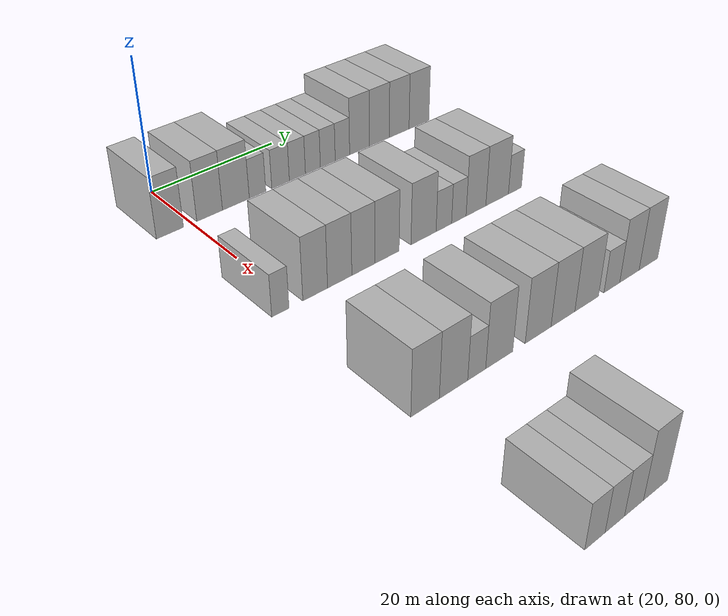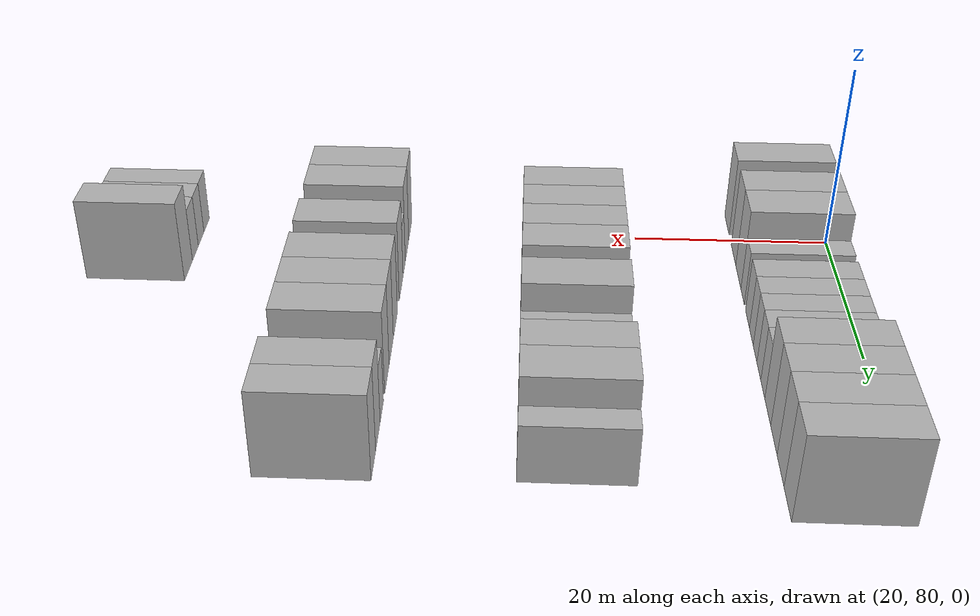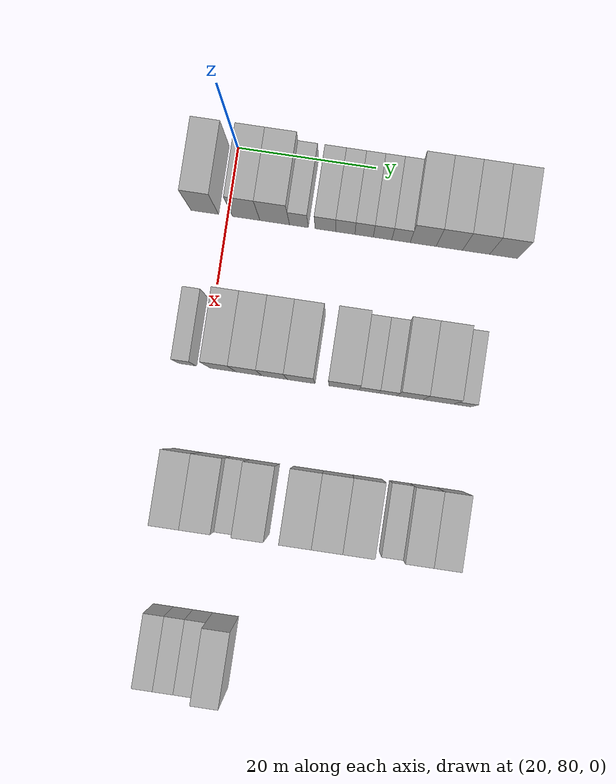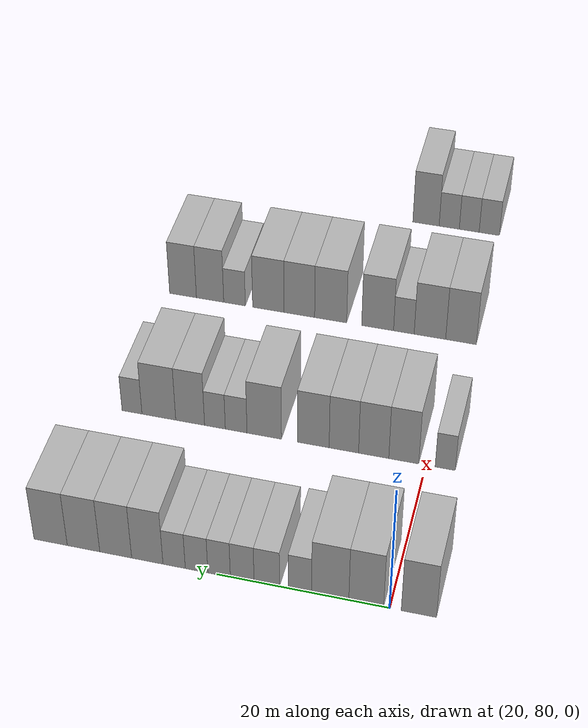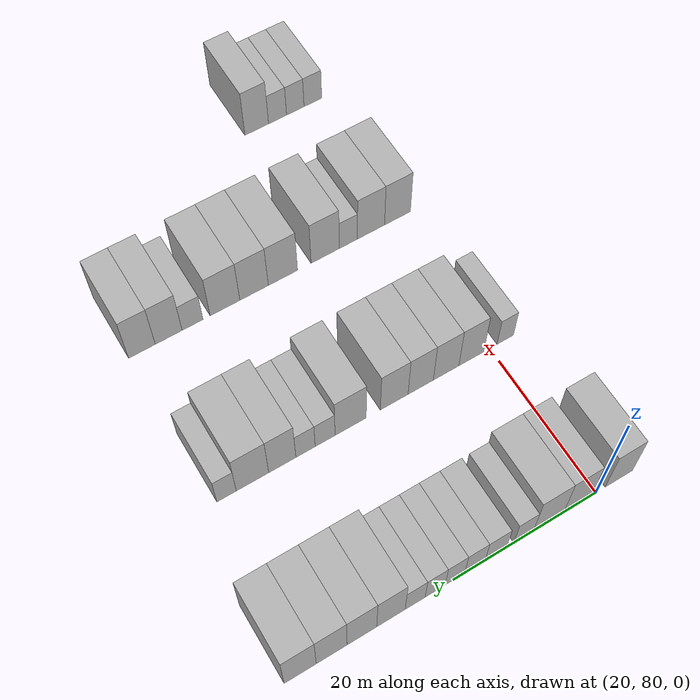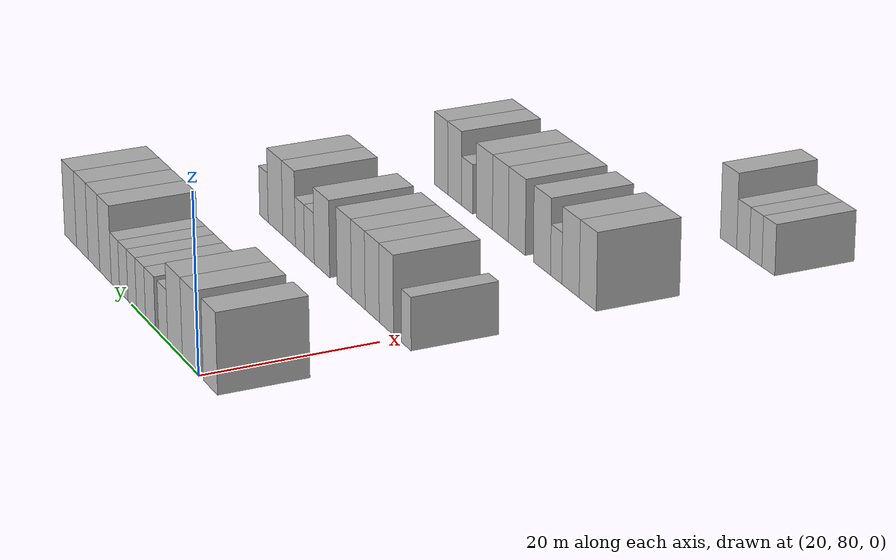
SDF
<sdf version="1.6">
 <world name="default">
  <model name="building_106">
   <static>1</static>
   <pose>25.0000 76.7027 0 0.000000 0.000000 0.000000</pose>
   <link name="link">
    <pose>0 0 4.50 0 0 0</pose>
    <collision name="collision"><geometry><box><size>10.0000 3.9942 9.0000</size></box></geometry></collision>
    <visual name="visual">
     <cast_shadows>0</cast_shadows>
     <geometry><box><size>10.0000 3.9942 9.0000</size></box></geometry>
     <material>
      <script>
       <uri>model://HANNAS_wall/materials/scripts</uri>
       <uri>model://HANNAS_wall/materials/textures</uri>
       <name>vrc/HANNAS_wall</name>
      </script>
     </material>
    </visual>
   </link>
  </model>
  <model name="building_107">
   <static>1</static>
   <pose>25.0000 82.6907 0 0.000000 0.000000 0.000000</pose>
   <link name="link">
    <pose>0 0 4.50 0 0 0</pose>
    <collision name="collision"><geometry><box><size>10.0000 3.9817 9.0000</size></box></geometry></collision>
    <visual name="visual">
     <cast_shadows>0</cast_shadows>
     <geometry><box><size>10.0000 3.9817 9.0000</size></box></geometry>
     <material>
      <script>
       <uri>model://HANNAS_wall/materials/scripts</uri>
       <uri>model://HANNAS_wall/materials/textures</uri>
       <name>vrc/HANNAS_wall</name>
      </script>
     </material>
    </visual>
   </link>
  </model>
  <model name="building_108">
   <static>1</static>
   <pose>25.0000 86.8249 0 0.000000 0.000000 0.000000</pose>
   <link name="link">
    <pose>0 0 4.50 0 0 0</pose>
    <collision name="collision"><geometry><box><size>10.0000 4.2866 9.0000</size></box></geometry></collision>
    <visual name="visual">
     <cast_shadows>0</cast_shadows>
     <geometry><box><size>10.0000 4.2866 9.0000</size></box></geometry>
     <material>
      <script>
       <uri>model://HANNAS_wall/materials/scripts</uri>
       <uri>model://HANNAS_wall/materials/textures</uri>
       <name>vrc/HANNAS_wall</name>
      </script>
     </material>
    </visual>
   </link>
  </model>
  <model name="building_109">
   <static>1</static>
   <pose>25.0000 90.3235 0 0.000000 0.000000 0.000000</pose>
   <link name="link">
    <pose>0 0 3.00 0 0 0</pose>
    <collision name="collision"><geometry><box><size>10.0000 2.7106 6.0000</size></box></geometry></collision>
    <visual name="visual">
     <cast_shadows>0</cast_shadows>
     <geometry><box><size>10.0000 2.7106 6.0000</size></box></geometry>
     <material>
      <script>
       <uri>model://HANNAS_wall/materials/scripts</uri>
       <uri>model://HANNAS_wall/materials/textures</uri>
       <name>vrc/HANNAS_wall</name>
      </script>
     </material>
    </visual>
   </link>
  </model>
  <model name="building_110">
   <static>1</static>
   <pose>25.0000 94.1667 0 0.000000 0.000000 0.000000</pose>
   <link name="link">
    <pose>0 0 3.00 0 0 0</pose>
    <collision name="collision"><geometry><box><size>10.0000 2.9757 6.0000</size></box></geometry></collision>
    <visual name="visual">
     <cast_shadows>0</cast_shadows>
     <geometry><box><size>10.0000 2.9757 6.0000</size></box></geometry>
     <material>
      <script>
       <uri>model://HANNAS_wall/materials/scripts</uri>
       <uri>model://HANNAS_wall/materials/textures</uri>
       <name>vrc/HANNAS_wall</name>
      </script>
     </material>
    </visual>
   </link>
  </model>
  <model name="building_111">
   <static>1</static>
   <pose>25.0000 97.0424 0 0.000000 0.000000 0.000000</pose>
   <link name="link">
    <pose>0 0 3.00 0 0 0</pose>
    <collision name="collision"><geometry><box><size>10.0000 2.7758 6.0000</size></box></geometry></collision>
    <visual name="visual">
     <cast_shadows>0</cast_shadows>
     <geometry><box><size>10.0000 2.7758 6.0000</size></box></geometry>
     <material>
      <script>
       <uri>model://HANNAS_wall/materials/scripts</uri>
       <uri>model://HANNAS_wall/materials/textures</uri>
       <name>vrc/HANNAS_wall</name>
      </script>
     </material>
    </visual>
   </link>
  </model>
  <model name="building_112">
   <static>1</static>
   <pose>25.0000 99.7522 0 0.000000 0.000000 0.000000</pose>
   <link name="link">
    <pose>0 0 3.00 0 0 0</pose>
    <collision name="collision"><geometry><box><size>10.0000 2.6437 6.0000</size></box></geometry></collision>
    <visual name="visual">
     <cast_shadows>0</cast_shadows>
     <geometry><box><size>10.0000 2.6437 6.0000</size></box></geometry>
     <material>
      <script>
       <uri>model://HANNAS_wall/materials/scripts</uri>
       <uri>model://HANNAS_wall/materials/textures</uri>
       <name>vrc/HANNAS_wall</name>
      </script>
     </material>
    </visual>
   </link>
  </model>
  <model name="building_113">
   <static>1</static>
   <pose>25.0000 102.4102 0 0.000000 0.000000 0.000000</pose>
   <link name="link">
    <pose>0 0 3.00 0 0 0</pose>
    <collision name="collision"><geometry><box><size>10.0000 2.6722 6.0000</size></box></geometry></collision>
    <visual name="visual">
     <cast_shadows>0</cast_shadows>
     <geometry><box><size>10.0000 2.6722 6.0000</size></box></geometry>
     <material>
      <script>
       <uri>model://HANNAS_wall/materials/scripts</uri>
       <uri>model://HANNAS_wall/materials/textures</uri>
       <name>vrc/HANNAS_wall</name>
      </script>
     </material>
    </visual>
   </link>
  </model>
  <model name="building_114">
   <static>1</static>
   <pose>25.0000 105.0721 0 0.000000 0.000000 0.000000</pose>
   <link name="link">
    <pose>0 0 3.00 0 0 0</pose>
    <collision name="collision"><geometry><box><size>10.0000 2.6515 6.0000</size></box></geometry></collision>
    <visual name="visual">
     <cast_shadows>0</cast_shadows>
     <geometry><box><size>10.0000 2.6515 6.0000</size></box></geometry>
     <material>
      <script>
       <uri>model://HANNAS_wall/materials/scripts</uri>
       <uri>model://HANNAS_wall/materials/textures</uri>
       <name>vrc/HANNAS_wall</name>
      </script>
     </material>
    </visual>
   </link>
  </model>
  <model name="building_115">
   <static>1</static>
   <pose>25.0000 108.2667 0 0.000000 0.000000 0.000000</pose>
   <link name="link">
    <pose>0 0 4.50 0 0 0</pose>
    <collision name="collision"><geometry><box><size>10.0000 3.7378 9.0000</size></box></geometry></collision>
    <visual name="visual">
     <cast_shadows>0</cast_shadows>
     <geometry><box><size>10.0000 3.7378 9.0000</size></box></geometry>
     <material>
      <script>
       <uri>model://HANNAS_wall/materials/scripts</uri>
       <uri>model://HANNAS_wall/materials/textures</uri>
       <name>vrc/HANNAS_wall</name>
      </script>
     </material>
    </visual>
   </link>
  </model>
  <model name="building_116">
   <static>1</static>
   <pose>25.0000 112.0498 0 0.000000 0.000000 0.000000</pose>
   <link name="link">
    <pose>0 0 4.50 0 0 0</pose>
    <collision name="collision"><geometry><box><size>10.0000 3.8282 9.0000</size></box></geometry></collision>
    <visual name="visual">
     <cast_shadows>0</cast_shadows>
     <geometry><box><size>10.0000 3.8282 9.0000</size></box></geometry>
     <material>
      <script>
       <uri>model://HANNAS_wall/materials/scripts</uri>
       <uri>model://HANNAS_wall/materials/textures</uri>
       <name>vrc/HANNAS_wall</name>
      </script>
     </material>
    </visual>
   </link>
  </model>
  <model name="building_117">
   <static>1</static>
   <pose>25.0000 115.9300 0 0.000000 0.000000 0.000000</pose>
   <link name="link">
    <pose>0 0 4.50 0 0 0</pose>
    <collision name="collision"><geometry><box><size>10.0000 3.9321 9.0000</size></box></geometry></collision>
    <visual name="visual">
     <cast_shadows>0</cast_shadows>
     <geometry><box><size>10.0000 3.9321 9.0000</size></box></geometry>
     <material>
      <script>
       <uri>model://HANNAS_wall/materials/scripts</uri>
       <uri>model://HANNAS_wall/materials/textures</uri>
       <name>vrc/HANNAS_wall</name>
      </script>
     </material>
    </visual>
   </link>
  </model>
  <model name="building_118">
   <static>1</static>
   <pose>25.0000 119.9202 0 0.000000 0.000000 0.000000</pose>
   <link name="link">
    <pose>0 0 4.50 0 0 0</pose>
    <collision name="collision"><geometry><box><size>10.0000 4.0483 9.0000</size></box></geometry></collision>
    <visual name="visual">
     <cast_shadows>0</cast_shadows>
     <geometry><box><size>10.0000 4.0483 9.0000</size></box></geometry>
     <material>
      <script>
       <uri>model://HANNAS_wall/materials/scripts</uri>
       <uri>model://HANNAS_wall/materials/textures</uri>
       <name>vrc/HANNAS_wall</name>
      </script>
     </material>
    </visual>
   </link>
  </model>
  <model name="building_298">
   <static>1</static>
   <pose>47.0000 77.7073 0 0.000000 0.000000 0.000000</pose>
   <link name="link">
    <pose>0 0 3.00 0 0 0</pose>
    <collision name="collision"><geometry><box><size>10.0000 2.4543 6.0000</size></box></geometry></collision>
    <visual name="visual">
     <cast_shadows>0</cast_shadows>
     <geometry><box><size>10.0000 2.4543 6.0000</size></box></geometry>
     <material>
      <script>
       <uri>model://HANNAS_wall/materials/scripts</uri>
       <uri>model://HANNAS_wall/materials/textures</uri>
       <name>vrc/HANNAS_wall</name>
      </script>
     </material>
    </visual>
   </link>
  </model>
  <model name="building_299">
   <static>1</static>
   <pose>47.0000 82.7753 0 0.000000 0.000000 0.000000</pose>
   <link name="link">
    <pose>0 0 4.50 0 0 0</pose>
    <collision name="collision"><geometry><box><size>10.0000 3.6816 9.0000</size></box></geometry></collision>
    <visual name="visual">
     <cast_shadows>0</cast_shadows>
     <geometry><box><size>10.0000 3.6816 9.0000</size></box></geometry>
     <material>
      <script>
       <uri>model://HANNAS_wall/materials/scripts</uri>
       <uri>model://HANNAS_wall/materials/textures</uri>
       <name>vrc/HANNAS_wall</name>
      </script>
     </material>
    </visual>
   </link>
  </model>
  <model name="building_300">
   <static>1</static>
   <pose>47.0000 86.4823 0 0.000000 0.000000 0.000000</pose>
   <link name="link">
    <pose>0 0 4.50 0 0 0</pose>
    <collision name="collision"><geometry><box><size>10.0000 3.7324 9.0000</size></box></geometry></collision>
    <visual name="visual">
     <cast_shadows>0</cast_shadows>
     <geometry><box><size>10.0000 3.7324 9.0000</size></box></geometry>
     <material>
      <script>
       <uri>model://HANNAS_wall/materials/scripts</uri>
       <uri>model://HANNAS_wall/materials/textures</uri>
       <name>vrc/HANNAS_wall</name>
      </script>
     </material>
    </visual>
   </link>
  </model>
  <model name="building_301">
   <static>1</static>
   <pose>47.0000 90.1769 0 0.000000 0.000000 0.000000</pose>
   <link name="link">
    <pose>0 0 4.50 0 0 0</pose>
    <collision name="collision"><geometry><box><size>10.0000 3.6568 9.0000</size></box></geometry></collision>
    <visual name="visual">
     <cast_shadows>0</cast_shadows>
     <geometry><box><size>10.0000 3.6568 9.0000</size></box></geometry>
     <material>
      <script>
       <uri>model://HANNAS_wall/materials/scripts</uri>
       <uri>model://HANNAS_wall/materials/textures</uri>
       <name>vrc/HANNAS_wall</name>
      </script>
     </material>
    </visual>
   </link>
  </model>
  <model name="building_302">
   <static>1</static>
   <pose>47.0000 93.9878 0 0.000000 0.000000 0.000000</pose>
   <link name="link">
    <pose>0 0 4.50 0 0 0</pose>
    <collision name="collision"><geometry><box><size>10.0000 3.9651 9.0000</size></box></geometry></collision>
    <visual name="visual">
     <cast_shadows>0</cast_shadows>
     <geometry><box><size>10.0000 3.9651 9.0000</size></box></geometry>
     <material>
      <script>
       <uri>model://HANNAS_wall/materials/scripts</uri>
       <uri>model://HANNAS_wall/materials/textures</uri>
       <name>vrc/HANNAS_wall</name>
      </script>
     </material>
    </visual>
   </link>
  </model>
  <model name="building_303">
   <static>1</static>
   <pose>47.0000 100.1431 0 0.000000 0.000000 0.000000</pose>
   <link name="link">
    <pose>0 0 4.50 0 0 0</pose>
    <collision name="collision"><geometry><box><size>10.0000 4.3455 9.0000</size></box></geometry></collision>
    <visual name="visual">
     <cast_shadows>0</cast_shadows>
     <geometry><box><size>10.0000 4.3455 9.0000</size></box></geometry>
     <material>
      <script>
       <uri>model://HANNAS_wall/materials/scripts</uri>
       <uri>model://HANNAS_wall/materials/textures</uri>
       <name>vrc/HANNAS_wall</name>
      </script>
     </material>
    </visual>
   </link>
  </model>
  <model name="building_304">
   <static>1</static>
   <pose>47.0000 103.6935 0 0.000000 0.000000 0.000000</pose>
   <link name="link">
    <pose>0 0 3.00 0 0 0</pose>
    <collision name="collision"><geometry><box><size>10.0000 2.7554 6.0000</size></box></geometry></collision>
    <visual name="visual">
     <cast_shadows>0</cast_shadows>
     <geometry><box><size>10.0000 2.7554 6.0000</size></box></geometry>
     <material>
      <script>
       <uri>model://HANNAS_wall/materials/scripts</uri>
       <uri>model://HANNAS_wall/materials/textures</uri>
       <name>vrc/HANNAS_wall</name>
      </script>
     </material>
    </visual>
   </link>
  </model>
  <model name="building_305">
   <static>1</static>
   <pose>47.0000 106.3929 0 0.000000 0.000000 0.000000</pose>
   <link name="link">
    <pose>0 0 3.00 0 0 0</pose>
    <collision name="collision"><geometry><box><size>10.0000 2.6433 6.0000</size></box></geometry></collision>
    <visual name="visual">
     <cast_shadows>0</cast_shadows>
     <geometry><box><size>10.0000 2.6433 6.0000</size></box></geometry>
     <material>
      <script>
       <uri>model://HANNAS_wall/materials/scripts</uri>
       <uri>model://HANNAS_wall/materials/textures</uri>
       <name>vrc/HANNAS_wall</name>
      </script>
     </material>
    </visual>
   </link>
  </model>
  <model name="building_306">
   <static>1</static>
   <pose>47.0000 109.5614 0 0.000000 0.000000 0.000000</pose>
   <link name="link">
    <pose>0 0 4.50 0 0 0</pose>
    <collision name="collision"><geometry><box><size>10.0000 3.6937 9.0000</size></box></geometry></collision>
    <visual name="visual">
     <cast_shadows>0</cast_shadows>
     <geometry><box><size>10.0000 3.6937 9.0000</size></box></geometry>
     <material>
      <script>
       <uri>model://HANNAS_wall/materials/scripts</uri>
       <uri>model://HANNAS_wall/materials/textures</uri>
       <name>vrc/HANNAS_wall</name>
      </script>
     </material>
    </visual>
   </link>
  </model>
  <model name="building_307">
   <static>1</static>
   <pose>47.0000 113.5830 0 0.000000 0.000000 0.000000</pose>
   <link name="link">
    <pose>0 0 4.50 0 0 0</pose>
    <collision name="collision"><geometry><box><size>10.0000 4.3495 9.0000</size></box></geometry></collision>
    <visual name="visual">
     <cast_shadows>0</cast_shadows>
     <geometry><box><size>10.0000 4.3495 9.0000</size></box></geometry>
     <material>
      <script>
       <uri>model://HANNAS_wall/materials/scripts</uri>
       <uri>model://HANNAS_wall/materials/textures</uri>
       <name>vrc/HANNAS_wall</name>
      </script>
     </material>
    </visual>
   </link>
  </model>
  <model name="building_308">
   <static>1</static>
   <pose>47.0000 117.0455 0 0.000000 0.000000 0.000000</pose>
   <link name="link">
    <pose>0 0 3.00 0 0 0</pose>
    <collision name="collision"><geometry><box><size>10.0000 2.5754 6.0000</size></box></geometry></collision>
    <visual name="visual">
     <cast_shadows>0</cast_shadows>
     <geometry><box><size>10.0000 2.5754 6.0000</size></box></geometry>
     <material>
      <script>
       <uri>model://HANNAS_wall/materials/scripts</uri>
       <uri>model://HANNAS_wall/materials/textures</uri>
       <name>vrc/HANNAS_wall</name>
      </script>
     </material>
    </visual>
   </link>
  </model>
  <model name="building_485">
   <static>1</static>
   <pose>69.0000 79.6303 0 0.000000 0.000000 0.000000</pose>
   <link name="link">
    <pose>0 0 4.50 0 0 0</pose>
    <collision name="collision"><geometry><box><size>10.0000 3.9961 9.0000</size></box></geometry></collision>
    <visual name="visual">
     <cast_shadows>0</cast_shadows>
     <geometry><box><size>10.0000 3.9961 9.0000</size></box></geometry>
     <material>
      <script>
       <uri>model://HANNAS_wall/materials/scripts</uri>
       <uri>model://HANNAS_wall/materials/textures</uri>
       <name>vrc/HANNAS_wall</name>
      </script>
     </material>
    </visual>
   </link>
  </model>
  <model name="building_486">
   <static>1</static>
   <pose>69.0000 83.6988 0 0.000000 0.000000 0.000000</pose>
   <link name="link">
    <pose>0 0 4.50 0 0 0</pose>
    <collision name="collision"><geometry><box><size>10.0000 4.1410 9.0000</size></box></geometry></collision>
    <visual name="visual">
     <cast_shadows>0</cast_shadows>
     <geometry><box><size>10.0000 4.1410 9.0000</size></box></geometry>
     <material>
      <script>
       <uri>model://HANNAS_wall/materials/scripts</uri>
       <uri>model://HANNAS_wall/materials/textures</uri>
       <name>vrc/HANNAS_wall</name>
      </script>
     </material>
    </visual>
   </link>
  </model>
  <model name="building_487">
   <static>1</static>
   <pose>69.0000 87.1268 0 0.000000 0.000000 0.000000</pose>
   <link name="link">
    <pose>0 0 3.00 0 0 0</pose>
    <collision name="collision"><geometry><box><size>10.0000 2.7150 6.0000</size></box></geometry></collision>
    <visual name="visual">
     <cast_shadows>0</cast_shadows>
     <geometry><box><size>10.0000 2.7150 6.0000</size></box></geometry>
     <material>
      <script>
       <uri>model://HANNAS_wall/materials/scripts</uri>
       <uri>model://HANNAS_wall/materials/textures</uri>
       <name>vrc/HANNAS_wall</name>
      </script>
     </material>
    </visual>
   </link>
  </model>
  <model name="building_488">
   <static>1</static>
   <pose>69.0000 90.6031 0 0.000000 0.000000 0.000000</pose>
   <link name="link">
    <pose>0 0 4.50 0 0 0</pose>
    <collision name="collision"><geometry><box><size>10.0000 4.2375 9.0000</size></box></geometry></collision>
    <visual name="visual">
     <cast_shadows>0</cast_shadows>
     <geometry><box><size>10.0000 4.2375 9.0000</size></box></geometry>
     <material>
      <script>
       <uri>model://HANNAS_wall/materials/scripts</uri>
       <uri>model://HANNAS_wall/materials/textures</uri>
       <name>vrc/HANNAS_wall</name>
      </script>
     </material>
    </visual>
   </link>
  </model>
  <model name="building_489">
   <static>1</static>
   <pose>69.0000 96.8660 0 0.000000 0.000000 0.000000</pose>
   <link name="link">
    <pose>0 0 4.50 0 0 0</pose>
    <collision name="collision"><geometry><box><size>10.0000 4.2883 9.0000</size></box></geometry></collision>
    <visual name="visual">
     <cast_shadows>0</cast_shadows>
     <geometry><box><size>10.0000 4.2883 9.0000</size></box></geometry>
     <material>
      <script>
       <uri>model://HANNAS_wall/materials/scripts</uri>
       <uri>model://HANNAS_wall/materials/textures</uri>
       <name>vrc/HANNAS_wall</name>
      </script>
     </material>
    </visual>
   </link>
  </model>
  <model name="building_490">
   <static>1</static>
   <pose>69.0000 101.0734 0 0.000000 0.000000 0.000000</pose>
   <link name="link">
    <pose>0 0 4.50 0 0 0</pose>
    <collision name="collision"><geometry><box><size>10.0000 4.1265 9.0000</size></box></geometry></collision>
    <visual name="visual">
     <cast_shadows>0</cast_shadows>
     <geometry><box><size>10.0000 4.1265 9.0000</size></box></geometry>
     <material>
      <script>
       <uri>model://HANNAS_wall/materials/scripts</uri>
       <uri>model://HANNAS_wall/materials/textures</uri>
       <name>vrc/HANNAS_wall</name>
      </script>
     </material>
    </visual>
   </link>
  </model>
  <model name="building_491">
   <static>1</static>
   <pose>69.0000 105.2635 0 0.000000 0.000000 0.000000</pose>
   <link name="link">
    <pose>0 0 4.50 0 0 0</pose>
    <collision name="collision"><geometry><box><size>10.0000 4.2537 9.0000</size></box></geometry></collision>
    <visual name="visual">
     <cast_shadows>0</cast_shadows>
     <geometry><box><size>10.0000 4.2537 9.0000</size></box></geometry>
     <material>
      <script>
       <uri>model://HANNAS_wall/materials/scripts</uri>
       <uri>model://HANNAS_wall/materials/textures</uri>
       <name>vrc/HANNAS_wall</name>
      </script>
     </material>
    </visual>
   </link>
  </model>
  <model name="building_492">
   <static>1</static>
   <pose>69.0000 109.8643 0 0.000000 0.000000 0.000000</pose>
   <link name="link">
    <pose>0 0 3.00 0 0 0</pose>
    <collision name="collision"><geometry><box><size>10.0000 2.9479 6.0000</size></box></geometry></collision>
    <visual name="visual">
     <cast_shadows>0</cast_shadows>
     <geometry><box><size>10.0000 2.9479 6.0000</size></box></geometry>
     <material>
      <script>
       <uri>model://HANNAS_wall/materials/scripts</uri>
       <uri>model://HANNAS_wall/materials/textures</uri>
       <name>vrc/HANNAS_wall</name>
      </script>
     </material>
    </visual>
   </link>
  </model>
  <model name="building_493">
   <static>1</static>
   <pose>69.0000 113.2132 0 0.000000 0.000000 0.000000</pose>
   <link name="link">
    <pose>0 0 4.50 0 0 0</pose>
    <collision name="collision"><geometry><box><size>10.0000 3.7499 9.0000</size></box></geometry></collision>
    <visual name="visual">
     <cast_shadows>0</cast_shadows>
     <geometry><box><size>10.0000 3.7499 9.0000</size></box></geometry>
     <material>
      <script>
       <uri>model://HANNAS_wall/materials/scripts</uri>
       <uri>model://HANNAS_wall/materials/textures</uri>
       <name>vrc/HANNAS_wall</name>
      </script>
     </material>
    </visual>
   </link>
  </model>
  <model name="building_494">
   <static>1</static>
   <pose>69.0000 116.9306 0 0.000000 0.000000 0.000000</pose>
   <link name="link">
    <pose>0 0 4.50 0 0 0</pose>
    <collision name="collision"><geometry><box><size>10.0000 3.6851 9.0000</size></box></geometry></collision>
    <visual name="visual">
     <cast_shadows>0</cast_shadows>
     <geometry><box><size>10.0000 3.6851 9.0000</size></box></geometry>
     <material>
      <script>
       <uri>model://HANNAS_wall/materials/scripts</uri>
       <uri>model://HANNAS_wall/materials/textures</uri>
       <name>vrc/HANNAS_wall</name>
      </script>
     </material>
    </visual>
   </link>
  </model>
  <model name="building_670">
   <static>1</static>
   <pose>91.0000 79.5163 0 0.000000 0.000000 0.000000</pose>
   <link name="link">
    <pose>0 0 3.00 0 0 0</pose>
    <collision name="collision"><geometry><box><size>10.0000 2.8196 6.0000</size></box></geometry></collision>
    <visual name="visual">
     <cast_shadows>0</cast_shadows>
     <geometry><box><size>10.0000 2.8196 6.0000</size></box></geometry>
     <material>
      <script>
       <uri>model://HANNAS_wall/materials/scripts</uri>
       <uri>model://HANNAS_wall/materials/textures</uri>
       <name>vrc/HANNAS_wall</name>
      </script>
     </material>
    </visual>
   </link>
  </model>
  <model name="building_671">
   <static>1</static>
   <pose>91.0000 82.3125 0 0.000000 0.000000 0.000000</pose>
   <link name="link">
    <pose>0 0 3.00 0 0 0</pose>
    <collision name="collision"><geometry><box><size>10.0000 2.7730 6.0000</size></box></geometry></collision>
    <visual name="visual">
     <cast_shadows>0</cast_shadows>
     <geometry><box><size>10.0000 2.7730 6.0000</size></box></geometry>
     <material>
      <script>
       <uri>model://HANNAS_wall/materials/scripts</uri>
       <uri>model://HANNAS_wall/materials/textures</uri>
       <name>vrc/HANNAS_wall</name>
      </script>
     </material>
    </visual>
   </link>
  </model>
  <model name="building_672">
   <static>1</static>
   <pose>91.0000 85.1103 0 0.000000 0.000000 0.000000</pose>
   <link name="link">
    <pose>0 0 3.00 0 0 0</pose>
    <collision name="collision"><geometry><box><size>10.0000 2.8226 6.0000</size></box></geometry></collision>
    <visual name="visual">
     <cast_shadows>0</cast_shadows>
     <geometry><box><size>10.0000 2.8226 6.0000</size></box></geometry>
     <material>
      <script>
       <uri>model://HANNAS_wall/materials/scripts</uri>
       <uri>model://HANNAS_wall/materials/textures</uri>
       <name>vrc/HANNAS_wall</name>
      </script>
     </material>
    </visual>
   </link>
  </model>
  <model name="building_673">
   <static>1</static>
   <pose>91.0000 88.3698 0 0.000000 0.000000 0.000000</pose>
   <link name="link">
    <pose>0 0 4.50 0 0 0</pose>
    <collision name="collision"><geometry><box><size>10.0000 3.6964 9.0000</size></box></geometry></collision>
    <visual name="visual">
     <cast_shadows>0</cast_shadows>
     <geometry><box><size>10.0000 3.6964 9.0000</size></box></geometry>
     <material>
      <script>
       <uri>model://HANNAS_wall/materials/scripts</uri>
       <uri>model://HANNAS_wall/materials/textures</uri>
       <name>vrc/HANNAS_wall</name>
      </script>
     </material>
    </visual>
   </link>
  </model>
 </world>
</sdf>
